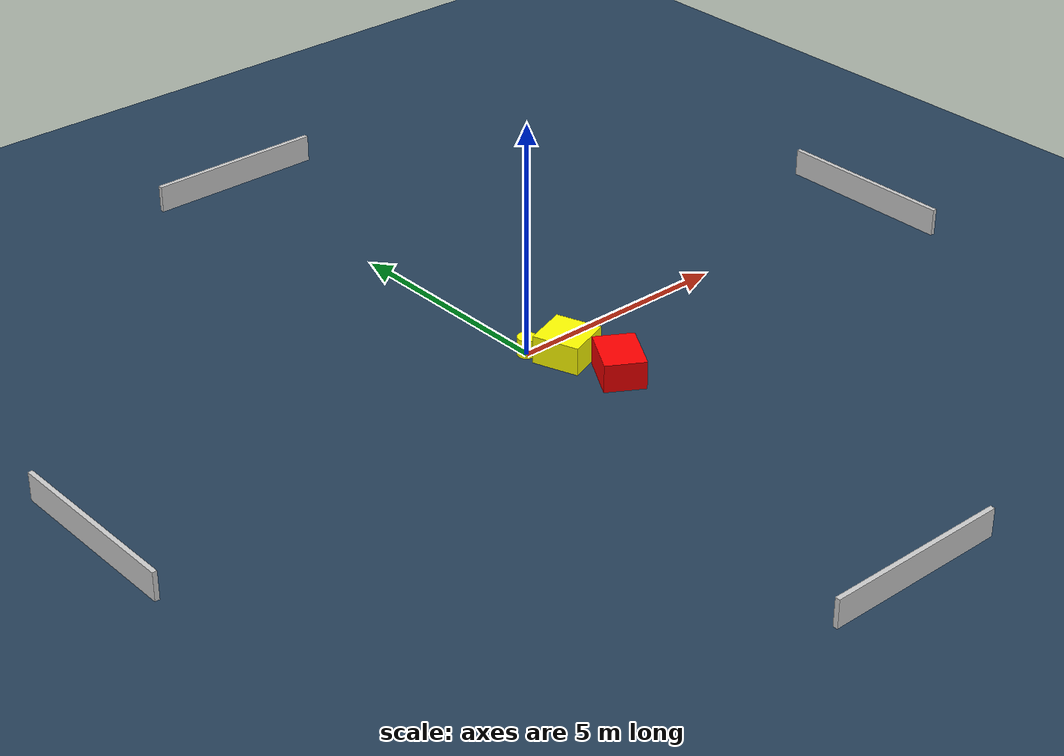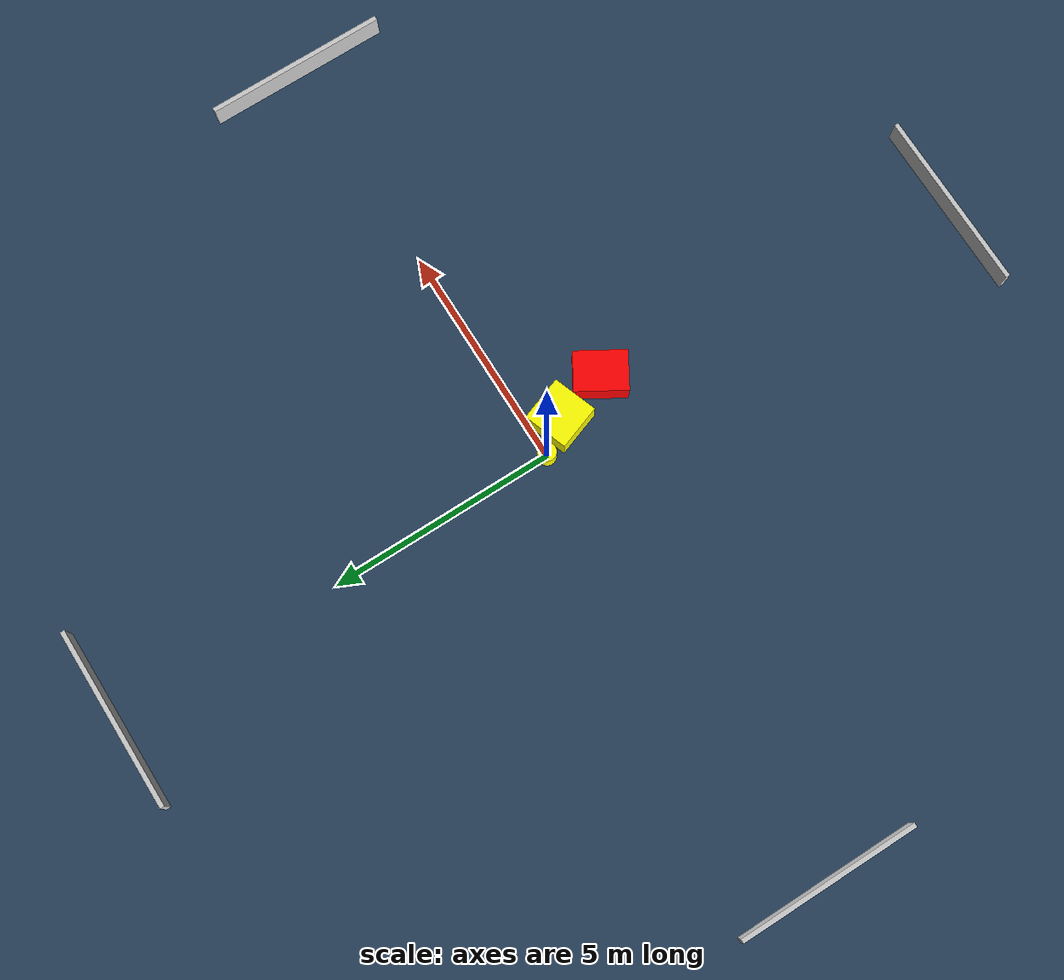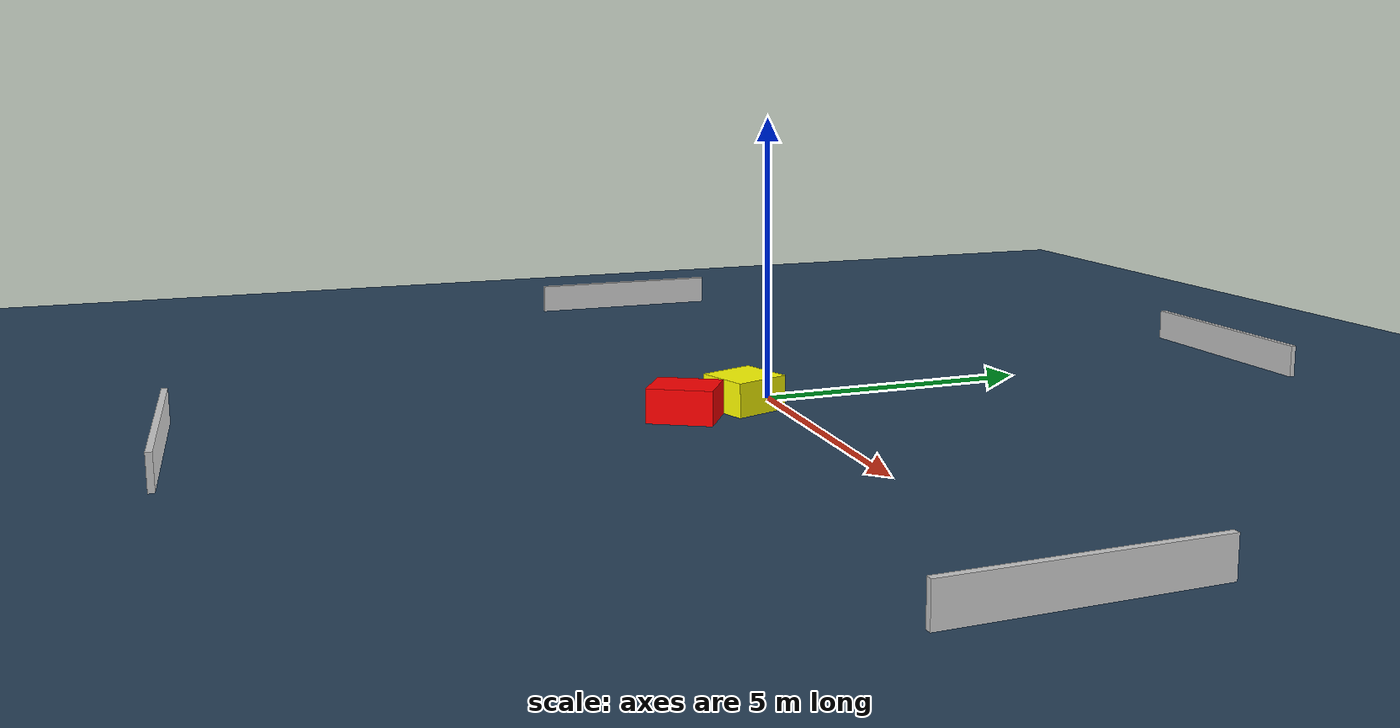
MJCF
<?xml version="1.0" ?>
<mujoco model="generated_environment">
  <option timestep="0.01" integrator="RK4" cone="elliptic"/>
  <default>
    <geom density="1"/>
  </default>
  <asset>
    <texture builtin="gradient" height="3072" name="skybox" rgb1="0.3 0.5 0.7" rgb2="0 0 0" type="skybox" width="512"/>
    <texture builtin="checker" height="300" name="groundplane" rgb1="0.2 0.3 0.4" rgb2="0.1 0.2 0.3" type="2d" width="300"/>
    <material name="groundplane" reflectance="0.2" texrepeat="5 5" texture="groundplane"/>
  </asset>
  <worldbody>
    <light dir="0 0 -1" directional="true" pos="0 0 1.5"/>
    <geom condim="3" friction="0.5 0.005 0.001" material="groundplane" name="floor" pos="0 0 0" size="0 0 0.05" type="plane"/>
    <body name="walls">
      <geom name="wall_1" condim="4" pos="-10.0 0.0 0.3" rgba="0.800000011920929 0.800000011920929 0.800000011920929 1.0" size="0.05 2.0 0.3" type="box"/>
      <geom name="wall_2" condim="4" pos="10.0 0.0 0.3" rgba="0.800000011920929 0.800000011920929 0.800000011920929 1.0" size="0.05 2.0 0.3" type="box"/>
      <geom name="wall_3" condim="4" pos="0.0 -10.0 0.3" rgba="0.800000011920929 0.800000011920929 0.800000011920929 1.0" size="2.0 0.05 0.3" type="box"/>
      <geom name="wall_4" condim="4" pos="0.0 10.0 0.3" rgba="0.800000011920929 0.800000011920929 0.800000011920929 1.0" size="2.0 0.05 0.3" type="box"/>
    </body>
    <body name="robot">
      <joint name="joint_x" type="slide" pos="0 0 0" axis="1 0 0"/>
      <joint name="joint_y" type="slide" pos="0 0 0" axis="0 1 0"/>
      <geom name="robot" type="cylinder" pos="0.0 0.0 0.2" size="0.2 0.2 0.0" mass="5.0" friction="1.0 0.005 0.0001" condim="4" rgba="1.0 1.0 0.0 1.0"/>
    </body>
    <body name="obstacle_1_movable">
      <geom name="obstacle_1_movable" condim="4" pos="0.5017921090639039 -0.6345990959980172 0.3" euler="0 0 289.55471190939716" friction="0.0 0.005 0.001" rgba="1.0 1.0 0.0 1.0" size="0.5017044213604265 0.4982769686183692 0.3" type="box" mass="0.1"/>
      <joint type="free"/>
    </body>
    <body name="obstacle_2_static">
      <geom name="obstacle_2_static" condim="4" pos="0.8099776786490962 -1.8114988658566227 0.3" euler="0 0 59.23568210165137" friction="0.0 0.005 0.001" rgba="1.0 0.0 0.0 1.0" size="0.5726442735186172 0.43185277657410936 0.3" type="box"/>
    </body>
  </worldbody>
  <actuator>
    <motor name="actuator_x" joint="joint_x" gear="1" ctrlrange="-1 1"/>
    <motor name="actuator_y" joint="joint_y" gear="1" ctrlrange="-1 1"/>
  </actuator>
</mujoco>
